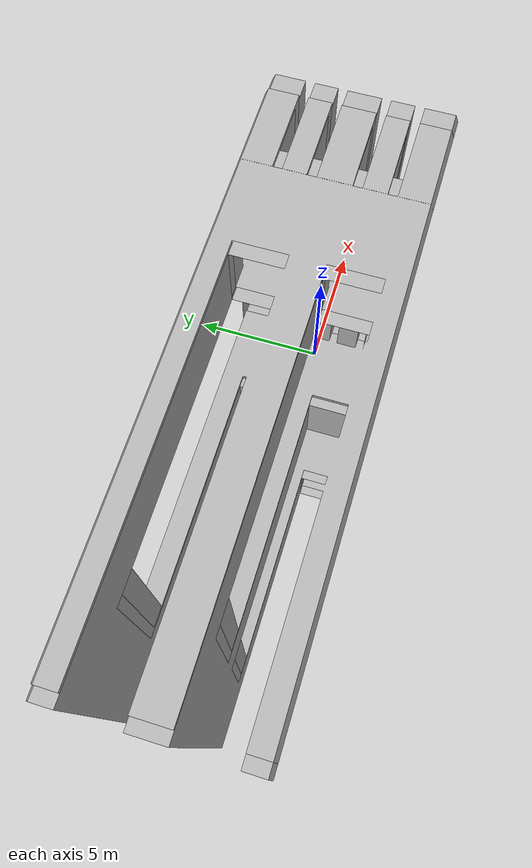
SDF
<sdf version='1.4'>
	<model name='two_pallets'>
		<static>1</static>
		<link name='pallet_1'>
			<pose>0 0 0.072 0 0 -1.5708</pose>
			<collision name='collision'>
				<geometry>
					<mesh>
						<uri>model://pallet/mesh/pallet.dae</uri>
						<scale>0.787 13.50 1.6197</scale>
					</mesh>
				</geometry>
				<surface>
					<bounce>
						<restitution_coefficient>0.01</restitution_coefficient>
						<threshold>5</threshold>
					</bounce>
					<friction>
						<ode>
							<mu>10</mu>
							<mu2>10</mu2>
						</ode>
					</friction>
					<contact>
						<ode>
							<soft_cfm>0.001</soft_cfm>
							<kp>100000</kp>
							<kd>1000</kd>
						</ode>
					</contact>
				</surface>
				<max_contacts>10</max_contacts>
			</collision>
			<visual name='visual'>
				<geometry>
					<mesh>
						<uri>model://pallet/mesh/pallet.dae</uri>
						<scale>0.787 13.50 1.6197</scale>
					</mesh>
				</geometry>
			</visual>
		</link>
		<link name='pallet_2'>
			<pose>1.2 0 0.072 0 0 -1.5708</pose>
			<collision name='collision'>
				<geometry>
					<mesh>
						<uri>model://pallet/mesh/pallet.dae</uri>
						<scale>0.787 13.50 1.6197</scale>
					</mesh>
				</geometry>
				<surface>
					<bounce>
						<restitution_coefficient>0.01</restitution_coefficient>
						<threshold>5</threshold>
					</bounce>
					<friction>
						<ode>
							<mu>10</mu>
							<mu2>10</mu2>
						</ode>
					</friction>
					<contact>
						<ode>
							<soft_cfm>0.001</soft_cfm>
							<kp>100000</kp>
							<kd>1000</kd>
						</ode>
					</contact>
				</surface>
				<max_contacts>10</max_contacts>
			</collision>
			<visual name='visual'>
				<geometry>
					<mesh>
						<uri>model://pallet/mesh/pallet.dae</uri>
						<scale>0.787 13.50 1.6197</scale>
					</mesh>
				</geometry>
			</visual>
		</link>
		<link name='pallet_3'>
			<pose>0.4 0 0.222 0 0 -1.5708</pose>
			<collision name='collision'>
				<geometry>
					<mesh>
						<uri>model://pallet/mesh/pallet.dae</uri>
						<scale>0.787 13.50 1.6197</scale>
					</mesh>
				</geometry>
				<surface>
					<bounce>
						<restitution_coefficient>0.01</restitution_coefficient>
						<threshold>5</threshold>
					</bounce>
					<friction>
						<ode>
							<mu>10</mu>
							<mu2>10</mu2>
						</ode>
					</friction>
					<contact>
						<ode>
							<soft_cfm>0.001</soft_cfm>
							<kp>100000</kp>
							<kd>1000</kd>
						</ode>
					</contact>
				</surface>
				<max_contacts>10</max_contacts>
			</collision>
			<visual name='visual'>
				<geometry>
					<mesh>
						<uri>model://pallet/mesh/pallet.dae</uri>
						<scale>0.787 13.50 1.6197</scale>
					</mesh>
				</geometry>
			</visual>
		</link>
</model>
</sdf>
